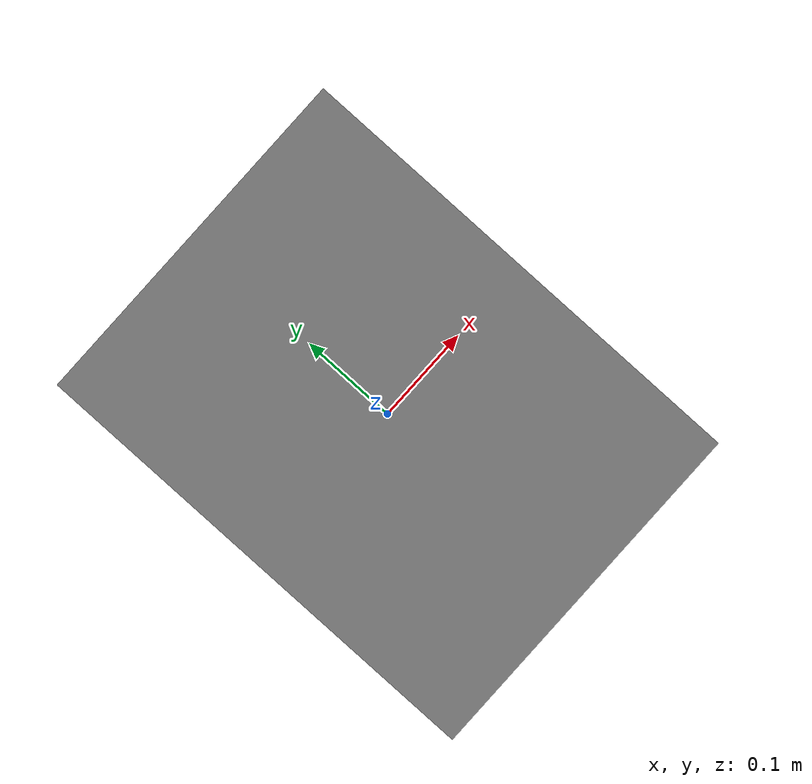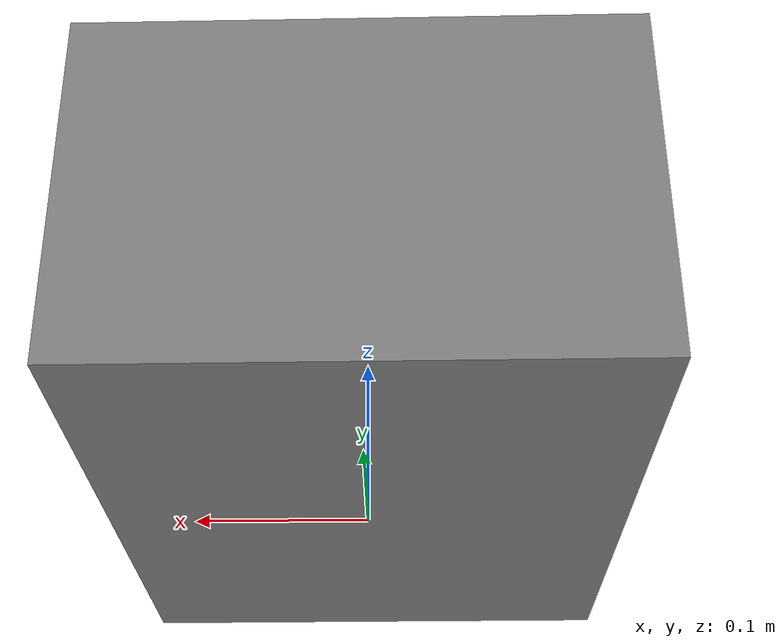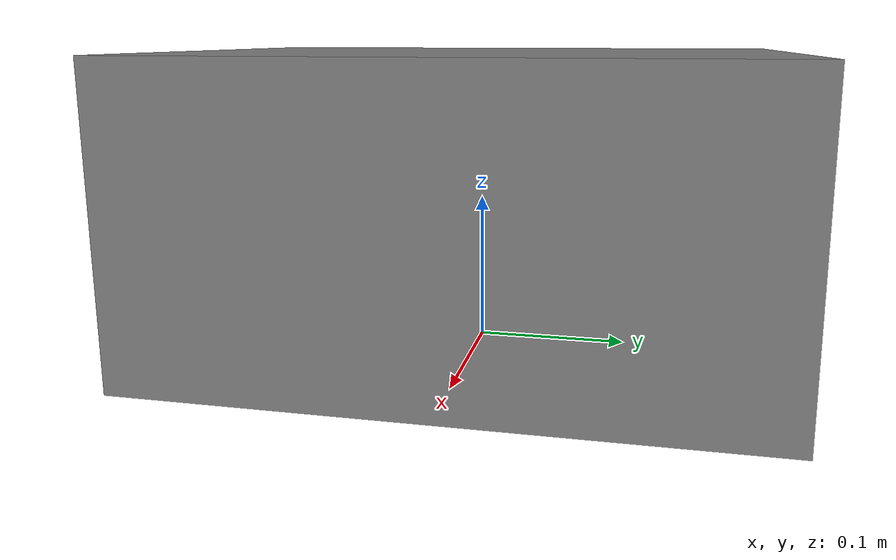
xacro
<?xml version="1.0"?>
<robot name="iliad" xmlns:xacro="http://wiki.ros.org/xacro">

     <link name="box1">
        <visual>
            <geometry>
                <box size="0.3 0.4 0.2"/>
            </geometry>
            <origin rpy="0 0 0" xyz="0 0 0.1"/>
            <material name="grey">
                <color rgba="0.5 0.5 0.5 1"/>
            </material>
        </visual>
        <collision>
            <geometry>
                <box size="0.3 0.4 0.2"/>
            </geometry>
            <origin rpy="0 0 0" xyz="0 0 0.1"/>
        </collision>
        <inertial>
            <mass value="2"/>
            <inertia ixx="0.033333" ixy="0.0" ixz="0.0" iyy="0.0216667" iyz="0.0" izz="0.04166667"/>
            <origin rpy="0 0 0" xyz="0 0 0.1"/>
        </inertial>
    </link>

    <gazebo reference="box1">
        <material>Gazebo/Grey</material>
        <mu1 value="1.0"/>
        <mu2 value="1.0"/>
        <min_depth value ="0.2"/>
    </gazebo>

</robot>
